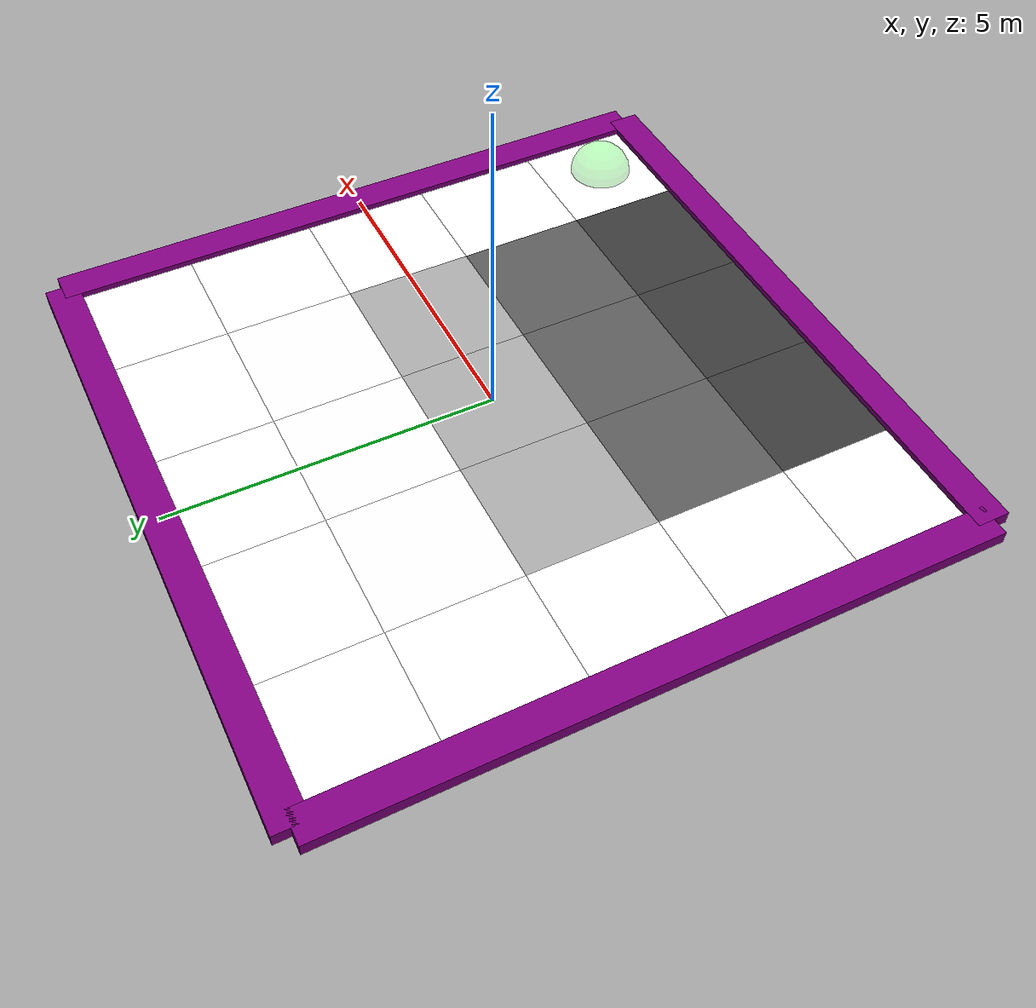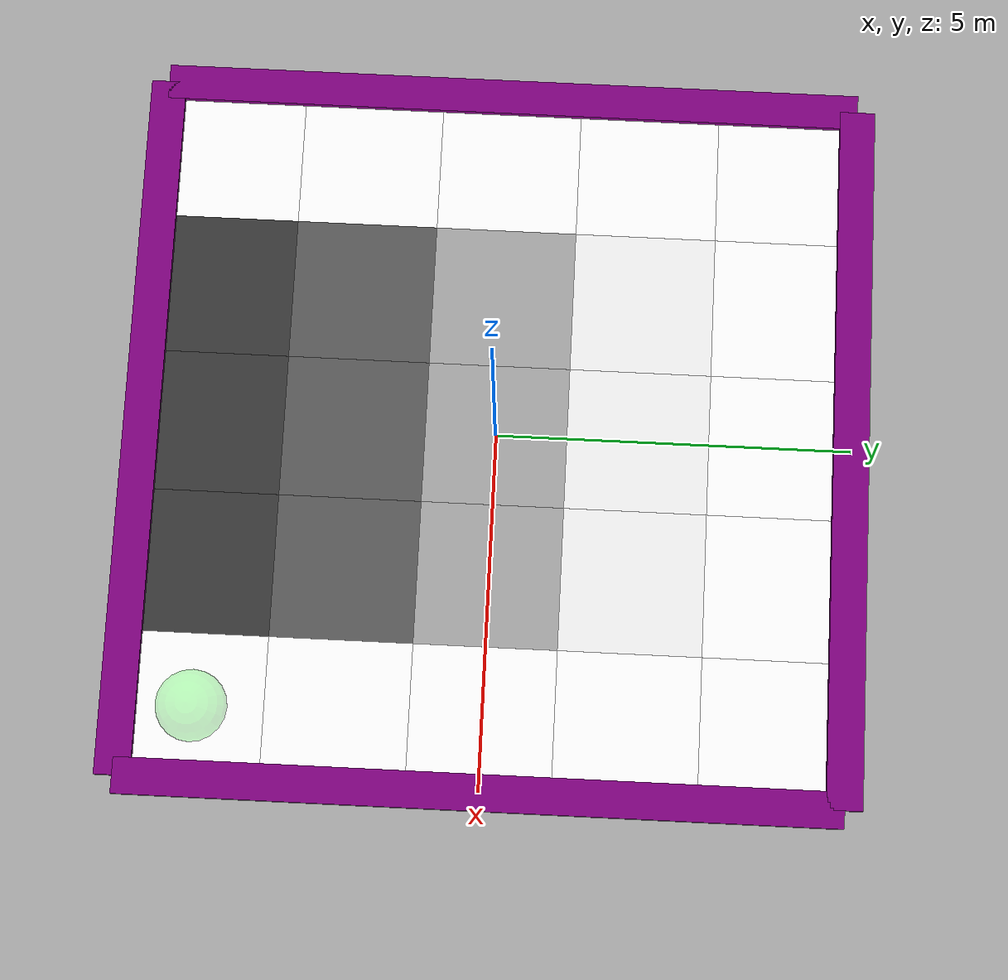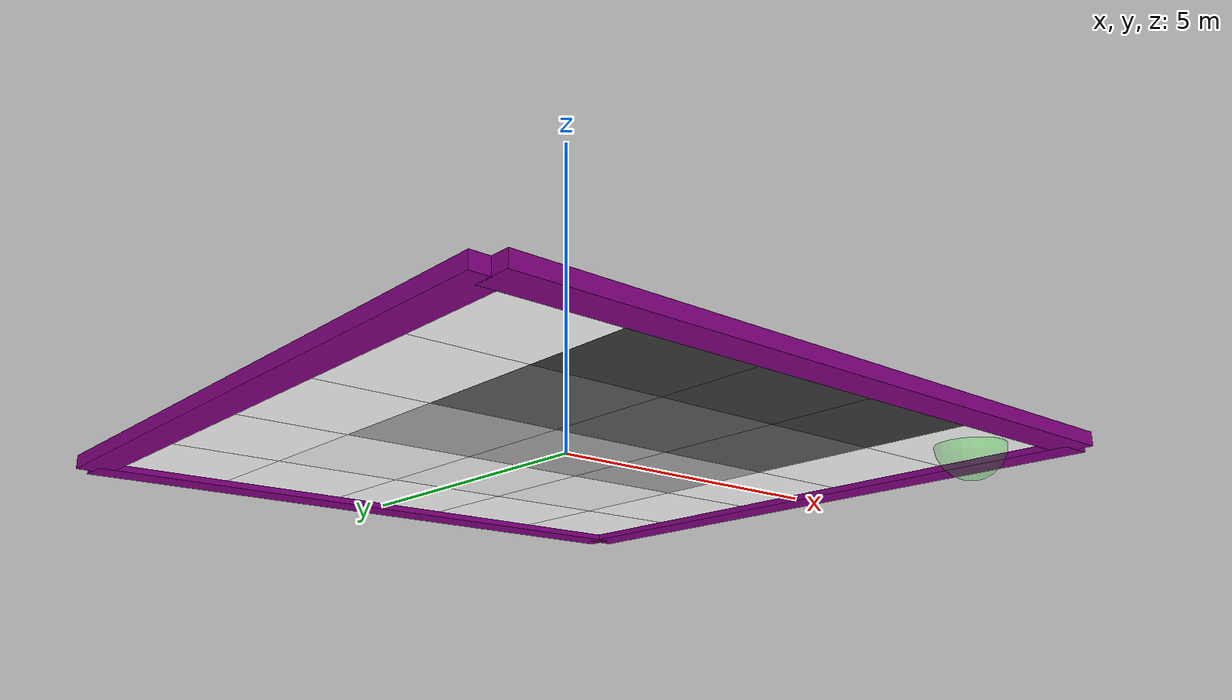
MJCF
<mujoco model="friction_floor_1">
  <compiler angle="radian" />
  <asset>
    <texture name='a' builtin="gradient" height="100" rgb1="1 1 1" rgb2="0 0 0" type="skybox" width="100"/>
    <texture name="texplane0" type="2d" builtin="checker" rgb1="0.14 0.83 0.43" rgb2="0.23 0.09 0.33" width="100" height="100" mark="cross" markrgb=".8 .8 .8"/>
    <texture name="texplane1" type="2d" builtin="checker" rgb1="0 0 0" rgb2="0.8 0.8 0.8" width="100" height="100" mark="cross" markrgb=".8 .8 .8"/>
    <material name="matplane0" reflectance="0.3" texture="texplane0" texrepeat="3 3" texuniform="true"/>
    <material name="matplane1" reflectance="0.3" texture="texplane1" texrepeat="3 3" texuniform="true"/>
  </asset>
  <visual>
    <headlight ambient="0.6 0.6 0.6" diffuse="0.5 0.5 0.5" specular="0.2 0.2 0.2"/>
    <map znear="0.001" />
  </visual>
  <worldbody>
  <body name="obstacle_upper">
    <geom name="obstacle_upper" type="box" pos="0 5 0" size="5 0.25 0.1" rgba="0.5 0.0 0.5 1"/>
  </body>
  <body name="obstacle_lower">
    <geom name="obstacle_lower" type="box" pos="0 -5 0" size="5 0.25 0.1" rgba="0.5 0.0 0.5 1"/>
  </body>
  <body name="obstacle_right">
    <geom name="obstacle_right" type="box" pos="5 0 0" size="0.25 5 0.1" rgba="0.5 0.0 0.5 1"/>
  </body>
  <body name="obstacle_left">
    <geom name="obstacle_left" type="box" pos="-5 0 0" size="0.25 5 0.1" rgba="0.5 0.0 0.5 1"/>
  </body>
    <geom contype="1" friction=".1 0.005 0.0001" name="floor-4+4" pos="-4 4 0" euler="0 0 0" size="1 1 0.01" type="box" rgba="1 1 1 1" condim="3" solimp="0 0.95 0.001 0.5 2" solref="0.02 1" margin="0"/>
    <geom contype="1" friction=".1 0.005 0.0001" name="floor-2+4" pos="-2 4 0" euler="0 0 0" size="1 1 0.01" type="box" rgba="1 1 1 1" condim="3" solimp="0 0.95 0.001 0.5 2" solref="0.02 1" margin="0"/>
    <geom contype="1" friction=".1 0.005 0.0001" name="floor-0+4" pos="0 4 0" euler="0 0 0" size="1 1 0.01" type="box" rgba="1 1 1 1" condim="3" solimp="0 0.95 0.001 0.5 2" solref="0.02 1" margin="0"/>
    <geom contype="1" friction=".1 0.005 0.0001" name="floor+2+4" pos="2 4 0" euler="0 0 0" size="1 1 0.01" type="box" rgba="1 1 1 1" condim="3" solimp="0 0.95 0.001 0.5 2" solref="0.02 1" margin="0"/>
    <geom contype="1" friction=".1 0.005 0.0001" name="floor+4+4" pos="4 4 0" euler="0 0 0" size="1 1 0.01" type="box" rgba="1 1 1 1" condim="3" solimp="0 0.95 0.001 0.5 2" solref="0.02 1" margin="0"/>

    <geom contype="1" friction=".1 0.005 0.0001" name="floor-4+2" pos="-4 2 0" euler="0 0 0" size="1 1 0.01" type="box" rgba="1 1 1  1" condim="3" solimp="0 0.95 0.001 0.5 2" solref="0.02 1" margin="0"/>
    <geom contype="1" friction=".1 0.005 0.0001" name="floor-2+2" pos="-2 2 0" euler="0 0 0" size="1 1 0.01" type="box" rgba="0.95 0.95 0.95 1" condim="3" />
    <geom contype="1" friction=".1 0.005 0.0001" name="floor-0+2" pos="0 2 0" euler="0 0 0" size="1 1 0.01" type="box" rgba="0.95 0.95 0.95 1" condim="3" />
    <geom contype="1" friction=".1 0.005 0.0001" name="floor+2+2" pos="2 2 0" euler="0 0 0" size="1 1 0.01" type="box" rgba="0.95 0.95 0.95 1" condim="3" />
    <geom contype="1" friction=".1 0.005 0.0001" name="floor+4+2" pos="4 2 0" euler="0 0 0" size="1 1 0.01" type="box" rgba="1 1 1  1" condim="3" solimp="0 0.95 0.001 0.5 2" solref="0.02 1" margin="0"/>

    <geom contype="1" friction=".1 0.005 0.0001" name="floor-4+0" pos="-4 0 0" euler="0 0 0" size="1 1 0.01" type="box" rgba="1 1 1 1" condim="3" solimp="0 0.95 0.001 0.5 2" solref="0.02 1" margin="0"/>
    <geom contype="1" friction=".1 0.005 0.00025" name="floor-2+0" pos="-2 0 0" euler="0 0 0" size="1 1 0.01" type="box" rgba="0.65 0.65 0.65 1" condim="3" />
    <geom contype="1" friction=".1 0.005 0.00025" name="floor-0+0" pos="0 0 0" euler="0 0 0" size="1 1 0.01" type="box" rgba="0.65 0.65 0.65 1" condim="3" />
    <geom contype="1" friction=".1 0.005 0.00025" name="floor+2+0" pos="2 0 0" euler="0 0 0" size="1 1 0.01" type="box" rgba="0.65 0.65 0.65 1" condim="3" />
    <geom contype="1" friction=".1 0.005 0.0001" name="floor+4+0" pos="4 0 0" euler="0 0 0" size="1 1 0.01" type="box" rgba="1 1 1 1" condim="3" solimp="0 0.95 0.001 0.5 2" solref="0.02 1" margin="0"/>

    <geom contype="1" friction=".1 0.005 0.0001" name="floor-4-2" pos="-4 -2 0" euler="0 0 0" size="1 1 0.01" type="box" rgba="1 1 1 1" condim="3" solimp="0 0.95 0.001 0.5 2" solref="0.02 1" margin="0"/>
    <geom contype="1" friction=".1 0.005 0.0005" name="floor-2-2" pos="-2 -2 0" euler="0 0 0" size="1 1 0.01" type="box" rgba="0.35 0.35 0.35 1" condim="3" />
    <geom contype="1" friction=".1 0.005 0.0005" name="floor-0-2" pos="0 -2 0" euler="0 0 0" size="1 1 0.01" type="box" rgba="0.35 0.35 0.35 1" condim="3" />
    <geom contype="1" friction=".1 0.005 0.0005" name="floor+2-2" pos="2 -2 0" euler="0 0 0" size="1 1 0.01" type="box" rgba="0.35 0.35 0.35 1" condim="3" />
    <geom contype="1" friction=".1 0.005 0.0001" name="floor+4-2" pos="4 -2 0" euler="0 0 0" size="1 1 0.01" type="box" rgba="1 1 1 1" condim="3" solimp="0 0.95 0.001 0.5 2" solref="0.02 1" margin="0"/>

    <geom contype="1" friction=".1 0.005 0.0001" name="floor-4-4" pos="-4 -4 0" euler="0 0 0" size="1 1 0.01" type="box" rgba="1 1 1 1" condim="3" solimp="0 0.95 0.001 0.5 2" solref="0.02 1" margin="0"/>
    <geom contype="1" friction=".1 0.005 0.001" name="floor-2-4" pos="-2 -4 0" euler="0 0 0" size="1 1 0.01" type="box" rgba="0.22 0.22 0.22 1" condim="3" />
    <geom contype="1" friction=".1 0.005 0.001" name="floor-0-4" pos="0 -4 0" euler="0 0 0" size="1 1 0.01" type="box" rgba="0.22 0.22 0.22 1" condim="3" />
    <geom contype="1" friction=".1 0.005 0.001" name="floor+2-4" pos="2 -4 0" euler="0 0 0" size="1 1 0.01" type="box" rgba="0.22 0.22 0.22 1" condim="3" />
    <geom contype="1" friction=".1 0.005 0.0001" name="floor+4-4" pos="4 -4 0" euler="0 0 0" size="1 1 0.01" type="box" rgba="1 1 1 1" condim="3" solimp="0 0.95 0.001 0.5 2" solref="0.02 1" margin="0"/>
    <site name="green_sphere" pos="4 -4 0" size="0.5" rgba="0 1 0 0.25" />
  </worldbody>
</mujoco>
